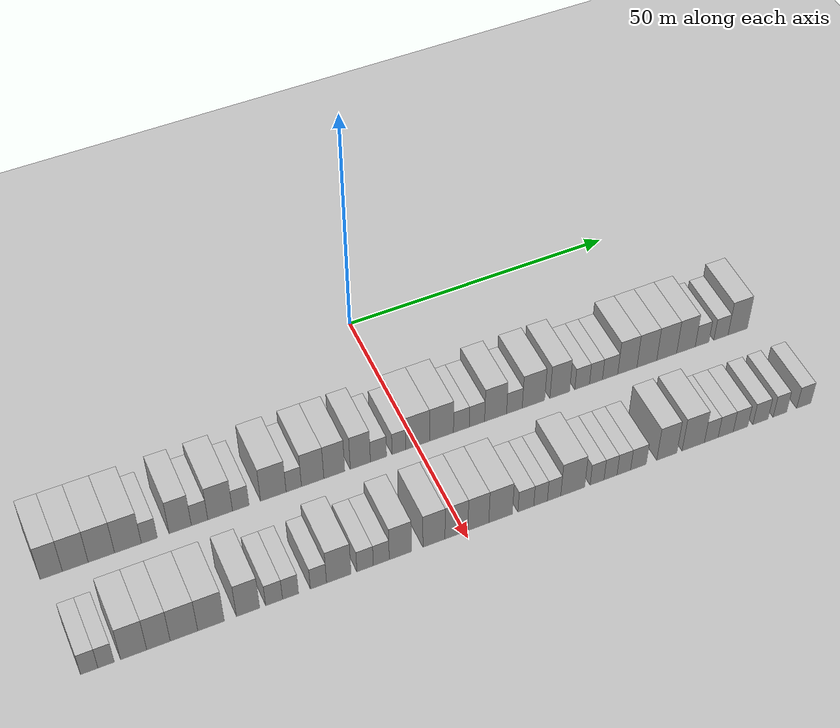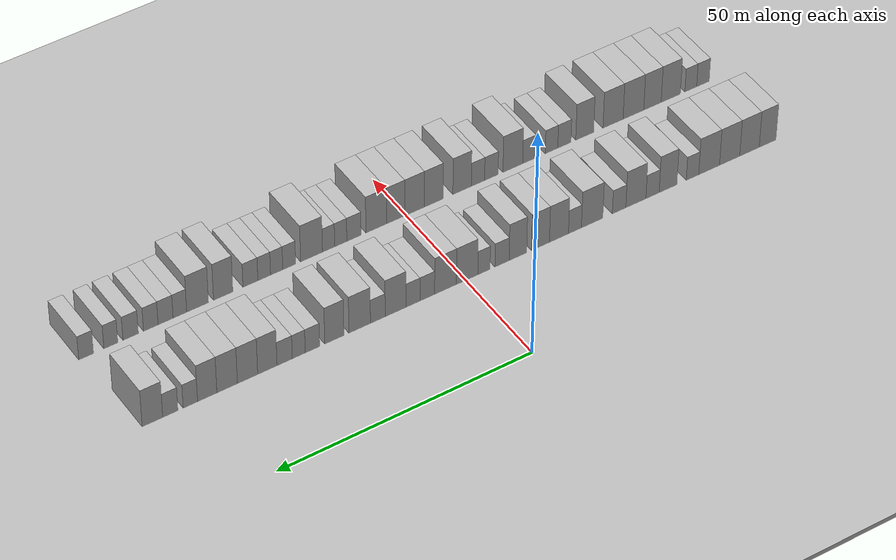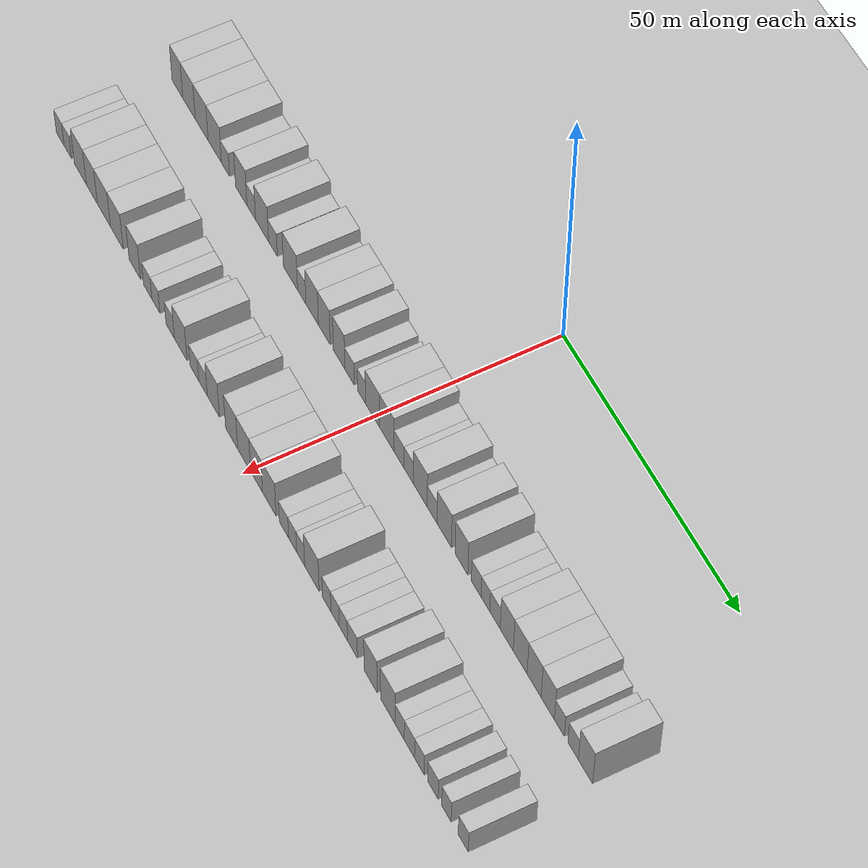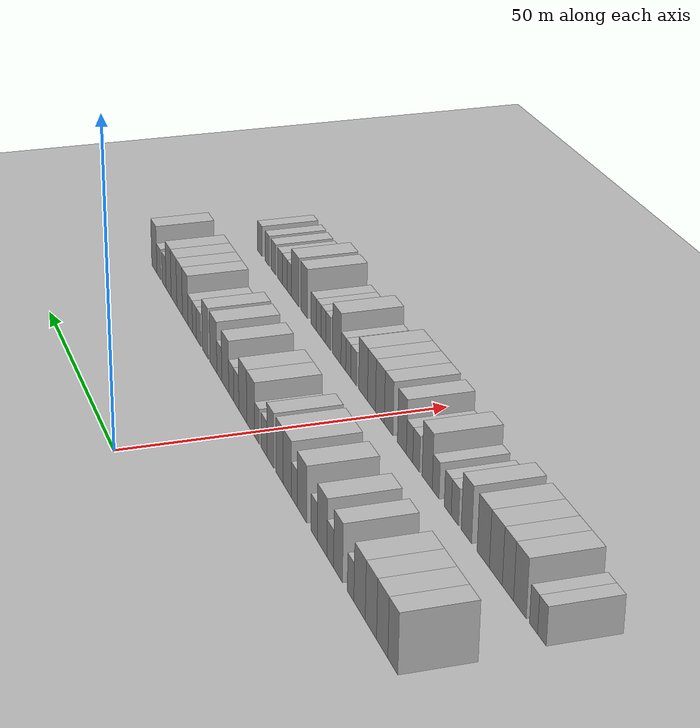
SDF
<sdf version="1.6">
 <world name="default">
  <include><name>ground_plane_1</name><uri>model://HANNAS_ground_plane</uri></include>
  <include>
   <name>ground_plane_2</name>
   <uri>model://HANNAS_ground_plane</uri>
   <pose>100 0 0  0 0 0</pose>
  </include>
  <model name="building_34">
   <static>1</static>
   <pose>25.0000 -63.4051 0 0.000000 0.000000 0.000000</pose>
   <link name="link">
    <pose>0 0 4.50 0 0 0</pose>
    <collision name="collision"><geometry><box><size>10.0000 3.6512 9.0000</size></box></geometry></collision>
    <visual name="visual">
     <cast_shadows>0</cast_shadows>
     <geometry><box><size>10.0000 3.6512 9.0000</size></box></geometry>
     <material>
      <script>
       <uri>model://HANNAS_wall/materials/scripts</uri>
       <uri>model://HANNAS_wall/materials/textures</uri>
       <name>vrc/HANNAS_wall</name>
      </script>
     </material>
    </visual>
   </link>
  </model>
  <model name="building_35">
   <static>1</static>
   <pose>25.0000 -59.4551 0 0.000000 0.000000 0.000000</pose>
   <link name="link">
    <pose>0 0 4.50 0 0 0</pose>
    <collision name="collision"><geometry><box><size>10.0000 4.2489 9.0000</size></box></geometry></collision>
    <visual name="visual">
     <cast_shadows>0</cast_shadows>
     <geometry><box><size>10.0000 4.2489 9.0000</size></box></geometry>
     <material>
      <script>
       <uri>model://HANNAS_wall/materials/scripts</uri>
       <uri>model://HANNAS_wall/materials/textures</uri>
       <name>vrc/HANNAS_wall</name>
      </script>
     </material>
    </visual>
   </link>
  </model>
  <model name="building_36">
   <static>1</static>
   <pose>25.0000 -55.1491 0 0.000000 0.000000 0.000000</pose>
   <link name="link">
    <pose>0 0 4.50 0 0 0</pose>
    <collision name="collision"><geometry><box><size>10.0000 4.3631 9.0000</size></box></geometry></collision>
    <visual name="visual">
     <cast_shadows>0</cast_shadows>
     <geometry><box><size>10.0000 4.3631 9.0000</size></box></geometry>
     <material>
      <script>
       <uri>model://HANNAS_wall/materials/scripts</uri>
       <uri>model://HANNAS_wall/materials/textures</uri>
       <name>vrc/HANNAS_wall</name>
      </script>
     </material>
    </visual>
   </link>
  </model>
  <model name="building_37">
   <static>1</static>
   <pose>25.0000 -50.7211 0 0.000000 0.000000 0.000000</pose>
   <link name="link">
    <pose>0 0 4.50 0 0 0</pose>
    <collision name="collision"><geometry><box><size>10.0000 4.4929 9.0000</size></box></geometry></collision>
    <visual name="visual">
     <cast_shadows>0</cast_shadows>
     <geometry><box><size>10.0000 4.4929 9.0000</size></box></geometry>
     <material>
      <script>
       <uri>model://HANNAS_wall/materials/scripts</uri>
       <uri>model://HANNAS_wall/materials/textures</uri>
       <name>vrc/HANNAS_wall</name>
      </script>
     </material>
    </visual>
   </link>
  </model>
  <model name="building_38">
   <static>1</static>
   <pose>25.0000 -47.1336 0 0.000000 0.000000 0.000000</pose>
   <link name="link">
    <pose>0 0 3.00 0 0 0</pose>
    <collision name="collision"><geometry><box><size>10.0000 2.6821 6.0000</size></box></geometry></collision>
    <visual name="visual">
     <cast_shadows>0</cast_shadows>
     <geometry><box><size>10.0000 2.6821 6.0000</size></box></geometry>
     <material>
      <script>
       <uri>model://HANNAS_wall/materials/scripts</uri>
       <uri>model://HANNAS_wall/materials/textures</uri>
       <name>vrc/HANNAS_wall</name>
      </script>
     </material>
    </visual>
   </link>
  </model>
  <model name="building_39">
   <static>1</static>
   <pose>25.0000 -41.9003 0 0.000000 0.000000 0.000000</pose>
   <link name="link">
    <pose>0 0 4.50 0 0 0</pose>
    <collision name="collision"><geometry><box><size>10.0000 3.7845 9.0000</size></box></geometry></collision>
    <visual name="visual">
     <cast_shadows>0</cast_shadows>
     <geometry><box><size>10.0000 3.7845 9.0000</size></box></geometry>
     <material>
      <script>
       <uri>model://HANNAS_wall/materials/scripts</uri>
       <uri>model://HANNAS_wall/materials/textures</uri>
       <name>vrc/HANNAS_wall</name>
      </script>
     </material>
    </visual>
   </link>
  </model>
  <model name="building_40">
   <static>1</static>
   <pose>25.0000 -38.6015 0 0.000000 0.000000 0.000000</pose>
   <link name="link">
    <pose>0 0 3.00 0 0 0</pose>
    <collision name="collision"><geometry><box><size>10.0000 2.8131 6.0000</size></box></geometry></collision>
    <visual name="visual">
     <cast_shadows>0</cast_shadows>
     <geometry><box><size>10.0000 2.8131 6.0000</size></box></geometry>
     <material>
      <script>
       <uri>model://HANNAS_wall/materials/scripts</uri>
       <uri>model://HANNAS_wall/materials/textures</uri>
       <name>vrc/HANNAS_wall</name>
      </script>
     </material>
    </visual>
   </link>
  </model>
  <model name="building_41">
   <static>1</static>
   <pose>25.0000 -35.0680 0 0.000000 0.000000 0.000000</pose>
   <link name="link">
    <pose>0 0 4.50 0 0 0</pose>
    <collision name="collision"><geometry><box><size>10.0000 4.2538 9.0000</size></box></geometry></collision>
    <visual name="visual">
     <cast_shadows>0</cast_shadows>
     <geometry><box><size>10.0000 4.2538 9.0000</size></box></geometry>
     <material>
      <script>
       <uri>model://HANNAS_wall/materials/scripts</uri>
       <uri>model://HANNAS_wall/materials/textures</uri>
       <name>vrc/HANNAS_wall</name>
      </script>
     </material>
    </visual>
   </link>
  </model>
  <model name="building_42">
   <static>1</static>
   <pose>25.0000 -31.5135 0 0.000000 0.000000 0.000000</pose>
   <link name="link">
    <pose>0 0 3.00 0 0 0</pose>
    <collision name="collision"><geometry><box><size>10.0000 2.8553 6.0000</size></box></geometry></collision>
    <visual name="visual">
     <cast_shadows>0</cast_shadows>
     <geometry><box><size>10.0000 2.8553 6.0000</size></box></geometry>
     <material>
      <script>
       <uri>model://HANNAS_wall/materials/scripts</uri>
       <uri>model://HANNAS_wall/materials/textures</uri>
       <name>vrc/HANNAS_wall</name>
      </script>
     </material>
    </visual>
   </link>
  </model>
  <model name="building_43">
   <static>1</static>
   <pose>25.0000 -25.8438 0 0.000000 0.000000 0.000000</pose>
   <link name="link">
    <pose>0 0 4.50 0 0 0</pose>
    <collision name="collision"><geometry><box><size>10.0000 4.4839 9.0000</size></box></geometry></collision>
    <visual name="visual">
     <cast_shadows>0</cast_shadows>
     <geometry><box><size>10.0000 4.4839 9.0000</size></box></geometry>
     <material>
      <script>
       <uri>model://HANNAS_wall/materials/scripts</uri>
       <uri>model://HANNAS_wall/materials/textures</uri>
       <name>vrc/HANNAS_wall</name>
      </script>
     </material>
    </visual>
   </link>
  </model>
  <model name="building_44">
   <static>1</static>
   <pose>25.0000 -22.2543 0 0.000000 0.000000 0.000000</pose>
   <link name="link">
    <pose>0 0 3.00 0 0 0</pose>
    <collision name="collision"><geometry><box><size>10.0000 2.6952 6.0000</size></box></geometry></collision>
    <visual name="visual">
     <cast_shadows>0</cast_shadows>
     <geometry><box><size>10.0000 2.6952 6.0000</size></box></geometry>
     <material>
      <script>
       <uri>model://HANNAS_wall/materials/scripts</uri>
       <uri>model://HANNAS_wall/materials/textures</uri>
       <name>vrc/HANNAS_wall</name>
      </script>
     </material>
    </visual>
   </link>
  </model>
  <model name="building_45">
   <static>1</static>
   <pose>25.0000 -18.9246 0 0.000000 0.000000 0.000000</pose>
   <link name="link">
    <pose>0 0 4.50 0 0 0</pose>
    <collision name="collision"><geometry><box><size>10.0000 3.9641 9.0000</size></box></geometry></collision>
    <visual name="visual">
     <cast_shadows>0</cast_shadows>
     <geometry><box><size>10.0000 3.9641 9.0000</size></box></geometry>
     <material>
      <script>
       <uri>model://HANNAS_wall/materials/scripts</uri>
       <uri>model://HANNAS_wall/materials/textures</uri>
       <name>vrc/HANNAS_wall</name>
      </script>
     </material>
    </visual>
   </link>
  </model>
  <model name="building_46">
   <static>1</static>
   <pose>25.0000 -15.0828 0 0.000000 0.000000 0.000000</pose>
   <link name="link">
    <pose>0 0 4.50 0 0 0</pose>
    <collision name="collision"><geometry><box><size>10.0000 3.7196 9.0000</size></box></geometry></collision>
    <visual name="visual">
     <cast_shadows>0</cast_shadows>
     <geometry><box><size>10.0000 3.7196 9.0000</size></box></geometry>
     <material>
      <script>
       <uri>model://HANNAS_wall/materials/scripts</uri>
       <uri>model://HANNAS_wall/materials/textures</uri>
       <name>vrc/HANNAS_wall</name>
      </script>
     </material>
    </visual>
   </link>
  </model>
  <model name="building_47">
   <static>1</static>
   <pose>25.0000 -10.4164 0 0.000000 0.000000 0.000000</pose>
   <link name="link">
    <pose>0 0 4.50 0 0 0</pose>
    <collision name="collision"><geometry><box><size>10.0000 3.6133 9.0000</size></box></geometry></collision>
    <visual name="visual">
     <cast_shadows>0</cast_shadows>
     <geometry><box><size>10.0000 3.6133 9.0000</size></box></geometry>
     <material>
      <script>
       <uri>model://HANNAS_wall/materials/scripts</uri>
       <uri>model://HANNAS_wall/materials/textures</uri>
       <name>vrc/HANNAS_wall</name>
      </script>
     </material>
    </visual>
   </link>
  </model>
  <model name="building_48">
   <static>1</static>
   <pose>25.0000 -7.1538 0 0.000000 0.000000 0.000000</pose>
   <link name="link">
    <pose>0 0 3.00 0 0 0</pose>
    <collision name="collision"><geometry><box><size>10.0000 2.9118 6.0000</size></box></geometry></collision>
    <visual name="visual">
     <cast_shadows>0</cast_shadows>
     <geometry><box><size>10.0000 2.9118 6.0000</size></box></geometry>
     <material>
      <script>
       <uri>model://HANNAS_wall/materials/scripts</uri>
       <uri>model://HANNAS_wall/materials/textures</uri>
       <name>vrc/HANNAS_wall</name>
      </script>
     </material>
    </visual>
   </link>
  </model>
  <model name="building_49">
   <static>1</static>
   <pose>25.0000 -3.4486 0 0.000000 0.000000 0.000000</pose>
   <link name="link">
    <pose>0 0 3.00 0 0 0</pose>
    <collision name="collision"><geometry><box><size>10.0000 2.4985 6.0000</size></box></geometry></collision>
    <visual name="visual">
     <cast_shadows>0</cast_shadows>
     <geometry><box><size>10.0000 2.4985 6.0000</size></box></geometry>
     <material>
      <script>
       <uri>model://HANNAS_wall/materials/scripts</uri>
       <uri>model://HANNAS_wall/materials/textures</uri>
       <name>vrc/HANNAS_wall</name>
      </script>
     </material>
    </visual>
   </link>
  </model>
  <model name="building_50">
   <static>1</static>
   <pose>25.0000 -0.0272 0 0.000000 0.000000 0.000000</pose>
   <link name="link">
    <pose>0 0 4.50 0 0 0</pose>
    <collision name="collision"><geometry><box><size>10.0000 4.3445 9.0000</size></box></geometry></collision>
    <visual name="visual">
     <cast_shadows>0</cast_shadows>
     <geometry><box><size>10.0000 4.3445 9.0000</size></box></geometry>
     <material>
      <script>
       <uri>model://HANNAS_wall/materials/scripts</uri>
       <uri>model://HANNAS_wall/materials/textures</uri>
       <name>vrc/HANNAS_wall</name>
      </script>
     </material>
    </visual>
   </link>
  </model>
  <model name="building_51">
   <static>1</static>
   <pose>25.0000 4.3547 0 0.000000 0.000000 0.000000</pose>
   <link name="link">
    <pose>0 0 4.50 0 0 0</pose>
    <collision name="collision"><geometry><box><size>10.0000 4.4192 9.0000</size></box></geometry></collision>
    <visual name="visual">
     <cast_shadows>0</cast_shadows>
     <geometry><box><size>10.0000 4.4192 9.0000</size></box></geometry>
     <material>
      <script>
       <uri>model://HANNAS_wall/materials/scripts</uri>
       <uri>model://HANNAS_wall/materials/textures</uri>
       <name>vrc/HANNAS_wall</name>
      </script>
     </material>
    </visual>
   </link>
  </model>
  <model name="building_52">
   <static>1</static>
   <pose>25.0000 8.0335 0 0.000000 0.000000 0.000000</pose>
   <link name="link">
    <pose>0 0 3.00 0 0 0</pose>
    <collision name="collision"><geometry><box><size>10.0000 2.9385 6.0000</size></box></geometry></collision>
    <visual name="visual">
     <cast_shadows>0</cast_shadows>
     <geometry><box><size>10.0000 2.9385 6.0000</size></box></geometry>
     <material>
      <script>
       <uri>model://HANNAS_wall/materials/scripts</uri>
       <uri>model://HANNAS_wall/materials/textures</uri>
       <name>vrc/HANNAS_wall</name>
      </script>
     </material>
    </visual>
   </link>
  </model>
  <model name="building_53">
   <static>1</static>
   <pose>25.0000 10.9266 0 0.000000 0.000000 0.000000</pose>
   <link name="link">
    <pose>0 0 3.00 0 0 0</pose>
    <collision name="collision"><geometry><box><size>10.0000 2.8477 6.0000</size></box></geometry></collision>
    <visual name="visual">
     <cast_shadows>0</cast_shadows>
     <geometry><box><size>10.0000 2.8477 6.0000</size></box></geometry>
     <material>
      <script>
       <uri>model://HANNAS_wall/materials/scripts</uri>
       <uri>model://HANNAS_wall/materials/textures</uri>
       <name>vrc/HANNAS_wall</name>
      </script>
     </material>
    </visual>
   </link>
  </model>
  <model name="building_54">
   <static>1</static>
   <pose>25.0000 14.4176 0 0.000000 0.000000 0.000000</pose>
   <link name="link">
    <pose>0 0 4.50 0 0 0</pose>
    <collision name="collision"><geometry><box><size>10.0000 4.1342 9.0000</size></box></geometry></collision>
    <visual name="visual">
     <cast_shadows>0</cast_shadows>
     <geometry><box><size>10.0000 4.1342 9.0000</size></box></geometry>
     <material>
      <script>
       <uri>model://HANNAS_wall/materials/scripts</uri>
       <uri>model://HANNAS_wall/materials/textures</uri>
       <name>vrc/HANNAS_wall</name>
      </script>
     </material>
    </visual>
   </link>
  </model>
  <model name="building_55">
   <static>1</static>
   <pose>25.0000 17.9612 0 0.000000 0.000000 0.000000</pose>
   <link name="link">
    <pose>0 0 3.00 0 0 0</pose>
    <collision name="collision"><geometry><box><size>10.0000 2.9531 6.0000</size></box></geometry></collision>
    <visual name="visual">
     <cast_shadows>0</cast_shadows>
     <geometry><box><size>10.0000 2.9531 6.0000</size></box></geometry>
     <material>
      <script>
       <uri>model://HANNAS_wall/materials/scripts</uri>
       <uri>model://HANNAS_wall/materials/textures</uri>
       <name>vrc/HANNAS_wall</name>
      </script>
     </material>
    </visual>
   </link>
  </model>
  <model name="building_56">
   <static>1</static>
   <pose>25.0000 21.5732 0 0.000000 0.000000 0.000000</pose>
   <link name="link">
    <pose>0 0 4.50 0 0 0</pose>
    <collision name="collision"><geometry><box><size>10.0000 4.2710 9.0000</size></box></geometry></collision>
    <visual name="visual">
     <cast_shadows>0</cast_shadows>
     <geometry><box><size>10.0000 4.2710 9.0000</size></box></geometry>
     <material>
      <script>
       <uri>model://HANNAS_wall/materials/scripts</uri>
       <uri>model://HANNAS_wall/materials/textures</uri>
       <name>vrc/HANNAS_wall</name>
      </script>
     </material>
    </visual>
   </link>
  </model>
  <model name="building_57">
   <static>1</static>
   <pose>25.0000 26.5971 0 0.000000 0.000000 0.000000</pose>
   <link name="link">
    <pose>0 0 4.50 0 0 0</pose>
    <collision name="collision"><geometry><box><size>10.0000 3.7767 9.0000</size></box></geometry></collision>
    <visual name="visual">
     <cast_shadows>0</cast_shadows>
     <geometry><box><size>10.0000 3.7767 9.0000</size></box></geometry>
     <material>
      <script>
       <uri>model://HANNAS_wall/materials/scripts</uri>
       <uri>model://HANNAS_wall/materials/textures</uri>
       <name>vrc/HANNAS_wall</name>
      </script>
     </material>
    </visual>
   </link>
  </model>
  <model name="building_58">
   <static>1</static>
   <pose>25.0000 30.9032 0 0.000000 0.000000 0.000000</pose>
   <link name="link">
    <pose>0 0 3.00 0 0 0</pose>
    <collision name="collision"><geometry><box><size>10.0000 2.8354 6.0000</size></box></geometry></collision>
    <visual name="visual">
     <cast_shadows>0</cast_shadows>
     <geometry><box><size>10.0000 2.8354 6.0000</size></box></geometry>
     <material>
      <script>
       <uri>model://HANNAS_wall/materials/scripts</uri>
       <uri>model://HANNAS_wall/materials/textures</uri>
       <name>vrc/HANNAS_wall</name>
      </script>
     </material>
    </visual>
   </link>
  </model>
  <model name="building_59">
   <static>1</static>
   <pose>25.0000 33.5812 0 0.000000 0.000000 0.000000</pose>
   <link name="link">
    <pose>0 0 3.00 0 0 0</pose>
    <collision name="collision"><geometry><box><size>10.0000 2.5206 6.0000</size></box></geometry></collision>
    <visual name="visual">
     <cast_shadows>0</cast_shadows>
     <geometry><box><size>10.0000 2.5206 6.0000</size></box></geometry>
     <material>
      <script>
       <uri>model://HANNAS_wall/materials/scripts</uri>
       <uri>model://HANNAS_wall/materials/textures</uri>
       <name>vrc/HANNAS_wall</name>
      </script>
     </material>
    </visual>
   </link>
  </model>
  <model name="building_60">
   <static>1</static>
   <pose>25.0000 36.3326 0 0.000000 0.000000 0.000000</pose>
   <link name="link">
    <pose>0 0 3.00 0 0 0</pose>
    <collision name="collision"><geometry><box><size>10.0000 2.9823 6.0000</size></box></geometry></collision>
    <visual name="visual">
     <cast_shadows>0</cast_shadows>
     <geometry><box><size>10.0000 2.9823 6.0000</size></box></geometry>
     <material>
      <script>
       <uri>model://HANNAS_wall/materials/scripts</uri>
       <uri>model://HANNAS_wall/materials/textures</uri>
       <name>vrc/HANNAS_wall</name>
      </script>
     </material>
    </visual>
   </link>
  </model>
  <model name="building_61">
   <static>1</static>
   <pose>25.0000 39.7058 0 0.000000 0.000000 0.000000</pose>
   <link name="link">
    <pose>0 0 4.50 0 0 0</pose>
    <collision name="collision"><geometry><box><size>10.0000 3.7640 9.0000</size></box></geometry></collision>
    <visual name="visual">
     <cast_shadows>0</cast_shadows>
     <geometry><box><size>10.0000 3.7640 9.0000</size></box></geometry>
     <material>
      <script>
       <uri>model://HANNAS_wall/materials/scripts</uri>
       <uri>model://HANNAS_wall/materials/textures</uri>
       <name>vrc/HANNAS_wall</name>
      </script>
     </material>
    </visual>
   </link>
  </model>
  <model name="building_62">
   <static>1</static>
   <pose>25.0000 43.5448 0 0.000000 0.000000 0.000000</pose>
   <link name="link">
    <pose>0 0 4.50 0 0 0</pose>
    <collision name="collision"><geometry><box><size>10.0000 3.9140 9.0000</size></box></geometry></collision>
    <visual name="visual">
     <cast_shadows>0</cast_shadows>
     <geometry><box><size>10.0000 3.9140 9.0000</size></box></geometry>
     <material>
      <script>
       <uri>model://HANNAS_wall/materials/scripts</uri>
       <uri>model://HANNAS_wall/materials/textures</uri>
       <name>vrc/HANNAS_wall</name>
      </script>
     </material>
    </visual>
   </link>
  </model>
  <model name="building_63">
   <static>1</static>
   <pose>25.0000 47.4772 0 0.000000 0.000000 0.000000</pose>
   <link name="link">
    <pose>0 0 4.50 0 0 0</pose>
    <collision name="collision"><geometry><box><size>10.0000 3.9509 9.0000</size></box></geometry></collision>
    <visual name="visual">
     <cast_shadows>0</cast_shadows>
     <geometry><box><size>10.0000 3.9509 9.0000</size></box></geometry>
     <material>
      <script>
       <uri>model://HANNAS_wall/materials/scripts</uri>
       <uri>model://HANNAS_wall/materials/textures</uri>
       <name>vrc/HANNAS_wall</name>
      </script>
     </material>
    </visual>
   </link>
  </model>
  <model name="building_64">
   <static>1</static>
   <pose>25.0000 51.3090 0 0.000000 0.000000 0.000000</pose>
   <link name="link">
    <pose>0 0 4.50 0 0 0</pose>
    <collision name="collision"><geometry><box><size>10.0000 3.7126 9.0000</size></box></geometry></collision>
    <visual name="visual">
     <cast_shadows>0</cast_shadows>
     <geometry><box><size>10.0000 3.7126 9.0000</size></box></geometry>
     <material>
      <script>
       <uri>model://HANNAS_wall/materials/scripts</uri>
       <uri>model://HANNAS_wall/materials/textures</uri>
       <name>vrc/HANNAS_wall</name>
      </script>
     </material>
    </visual>
   </link>
  </model>
  <model name="building_65">
   <static>1</static>
   <pose>25.0000 54.5427 0 0.000000 0.000000 0.000000</pose>
   <link name="link">
    <pose>0 0 3.00 0 0 0</pose>
    <collision name="collision"><geometry><box><size>10.0000 2.7549 6.0000</size></box></geometry></collision>
    <visual name="visual">
     <cast_shadows>0</cast_shadows>
     <geometry><box><size>10.0000 2.7549 6.0000</size></box></geometry>
     <material>
      <script>
       <uri>model://HANNAS_wall/materials/scripts</uri>
       <uri>model://HANNAS_wall/materials/textures</uri>
       <name>vrc/HANNAS_wall</name>
      </script>
     </material>
    </visual>
   </link>
  </model>
  <model name="building_66">
   <static>1</static>
   <pose>25.0000 58.3612 0 0.000000 0.000000 0.000000</pose>
   <link name="link">
    <pose>0 0 3.00 0 0 0</pose>
    <collision name="collision"><geometry><box><size>10.0000 2.8820 6.0000</size></box></geometry></collision>
    <visual name="visual">
     <cast_shadows>0</cast_shadows>
     <geometry><box><size>10.0000 2.8820 6.0000</size></box></geometry>
     <material>
      <script>
       <uri>model://HANNAS_wall/materials/scripts</uri>
       <uri>model://HANNAS_wall/materials/textures</uri>
       <name>vrc/HANNAS_wall</name>
      </script>
     </material>
    </visual>
   </link>
  </model>
  <model name="building_67">
   <static>1</static>
   <pose>25.0000 61.7529 0 0.000000 0.000000 0.000000</pose>
   <link name="link">
    <pose>0 0 4.50 0 0 0</pose>
    <collision name="collision"><geometry><box><size>10.0000 3.9013 9.0000</size></box></geometry></collision>
    <visual name="visual">
     <cast_shadows>0</cast_shadows>
     <geometry><box><size>10.0000 3.9013 9.0000</size></box></geometry>
     <material>
      <script>
       <uri>model://HANNAS_wall/materials/scripts</uri>
       <uri>model://HANNAS_wall/materials/textures</uri>
       <name>vrc/HANNAS_wall</name>
      </script>
     </material>
    </visual>
   </link>
  </model>
  <model name="building_138">
   <static>1</static>
   <pose>44.0000 -62.9575 0 0.000000 0.000000 0.000000</pose>
   <link name="link">
    <pose>0 0 3.00 0 0 0</pose>
    <collision name="collision"><geometry><box><size>10.0000 2.7540 6.0000</size></box></geometry></collision>
    <visual name="visual">
     <cast_shadows>0</cast_shadows>
     <geometry><box><size>10.0000 2.7540 6.0000</size></box></geometry>
     <material>
      <script>
       <uri>model://HANNAS_wall/materials/scripts</uri>
       <uri>model://HANNAS_wall/materials/textures</uri>
       <name>vrc/HANNAS_wall</name>
      </script>
     </material>
    </visual>
   </link>
  </model>
  <model name="building_139">
   <static>1</static>
   <pose>44.0000 -60.2857 0 0.000000 0.000000 0.000000</pose>
   <link name="link">
    <pose>0 0 3.00 0 0 0</pose>
    <collision name="collision"><geometry><box><size>10.0000 2.5895 6.0000</size></box></geometry></collision>
    <visual name="visual">
     <cast_shadows>0</cast_shadows>
     <geometry><box><size>10.0000 2.5895 6.0000</size></box></geometry>
     <material>
      <script>
       <uri>model://HANNAS_wall/materials/scripts</uri>
       <uri>model://HANNAS_wall/materials/textures</uri>
       <name>vrc/HANNAS_wall</name>
      </script>
     </material>
    </visual>
   </link>
  </model>
  <model name="building_140">
   <static>1</static>
   <pose>44.0000 -55.8949 0 0.000000 0.000000 0.000000</pose>
   <link name="link">
    <pose>0 0 4.50 0 0 0</pose>
    <collision name="collision"><geometry><box><size>10.0000 4.1921 9.0000</size></box></geometry></collision>
    <visual name="visual">
     <cast_shadows>0</cast_shadows>
     <geometry><box><size>10.0000 4.1921 9.0000</size></box></geometry>
     <material>
      <script>
       <uri>model://HANNAS_wall/materials/scripts</uri>
       <uri>model://HANNAS_wall/materials/textures</uri>
       <name>vrc/HANNAS_wall</name>
      </script>
     </material>
    </visual>
   </link>
  </model>
  <model name="building_141">
   <static>1</static>
   <pose>44.0000 -51.9000 0 0.000000 0.000000 0.000000</pose>
   <link name="link">
    <pose>0 0 4.50 0 0 0</pose>
    <collision name="collision"><geometry><box><size>10.0000 3.7979 9.0000</size></box></geometry></collision>
    <visual name="visual">
     <cast_shadows>0</cast_shadows>
     <geometry><box><size>10.0000 3.7979 9.0000</size></box></geometry>
     <material>
      <script>
       <uri>model://HANNAS_wall/materials/scripts</uri>
       <uri>model://HANNAS_wall/materials/textures</uri>
       <name>vrc/HANNAS_wall</name>
      </script>
     </material>
    </visual>
   </link>
  </model>
  <model name="building_142">
   <static>1</static>
   <pose>44.0000 -47.7622 0 0.000000 0.000000 0.000000</pose>
   <link name="link">
    <pose>0 0 4.50 0 0 0</pose>
    <collision name="collision"><geometry><box><size>10.0000 4.4777 9.0000</size></box></geometry></collision>
    <visual name="visual">
     <cast_shadows>0</cast_shadows>
     <geometry><box><size>10.0000 4.4777 9.0000</size></box></geometry>
     <material>
      <script>
       <uri>model://HANNAS_wall/materials/scripts</uri>
       <uri>model://HANNAS_wall/materials/textures</uri>
       <name>vrc/HANNAS_wall</name>
      </script>
     </material>
    </visual>
   </link>
  </model>
  <model name="building_143">
   <static>1</static>
   <pose>44.0000 -43.3488 0 0.000000 0.000000 0.000000</pose>
   <link name="link">
    <pose>0 0 4.50 0 0 0</pose>
    <collision name="collision"><geometry><box><size>10.0000 4.3491 9.0000</size></box></geometry></collision>
    <visual name="visual">
     <cast_shadows>0</cast_shadows>
     <geometry><box><size>10.0000 4.3491 9.0000</size></box></geometry>
     <material>
      <script>
       <uri>model://HANNAS_wall/materials/scripts</uri>
       <uri>model://HANNAS_wall/materials/textures</uri>
       <name>vrc/HANNAS_wall</name>
      </script>
     </material>
    </visual>
   </link>
  </model>
  <model name="building_144">
   <static>1</static>
   <pose>44.0000 -37.2483 0 0.000000 0.000000 0.000000</pose>
   <link name="link">
    <pose>0 0 4.50 0 0 0</pose>
    <collision name="collision"><geometry><box><size>10.0000 3.8519 9.0000</size></box></geometry></collision>
    <visual name="visual">
     <cast_shadows>0</cast_shadows>
     <geometry><box><size>10.0000 3.8519 9.0000</size></box></geometry>
     <material>
      <script>
       <uri>model://HANNAS_wall/materials/scripts</uri>
       <uri>model://HANNAS_wall/materials/textures</uri>
       <name>vrc/HANNAS_wall</name>
      </script>
     </material>
    </visual>
   </link>
  </model>
  <model name="building_145">
   <static>1</static>
   <pose>44.0000 -32.9119 0 0.000000 0.000000 0.000000</pose>
   <link name="link">
    <pose>0 0 3.00 0 0 0</pose>
    <collision name="collision"><geometry><box><size>10.0000 2.8209 6.0000</size></box></geometry></collision>
    <visual name="visual">
     <cast_shadows>0</cast_shadows>
     <geometry><box><size>10.0000 2.8209 6.0000</size></box></geometry>
     <material>
      <script>
       <uri>model://HANNAS_wall/materials/scripts</uri>
       <uri>model://HANNAS_wall/materials/textures</uri>
       <name>vrc/HANNAS_wall</name>
      </script>
     </material>
    </visual>
   </link>
  </model>
  <model name="building_146">
   <static>1</static>
   <pose>44.0000 -30.1590 0 0.000000 0.000000 0.000000</pose>
   <link name="link">
    <pose>0 0 3.00 0 0 0</pose>
    <collision name="collision"><geometry><box><size>10.0000 2.6849 6.0000</size></box></geometry></collision>
    <visual name="visual">
     <cast_shadows>0</cast_shadows>
     <geometry><box><size>10.0000 2.6849 6.0000</size></box></geometry>
     <material>
      <script>
       <uri>model://HANNAS_wall/materials/scripts</uri>
       <uri>model://HANNAS_wall/materials/textures</uri>
       <name>vrc/HANNAS_wall</name>
      </script>
     </material>
    </visual>
   </link>
  </model>
  <model name="building_147">
   <static>1</static>
   <pose>44.0000 -25.4429 0 0.000000 0.000000 0.000000</pose>
   <link name="link">
    <pose>0 0 3.00 0 0 0</pose>
    <collision name="collision"><geometry><box><size>10.0000 2.7472 6.0000</size></box></geometry></collision>
    <visual name="visual">
     <cast_shadows>0</cast_shadows>
     <geometry><box><size>10.0000 2.7472 6.0000</size></box></geometry>
     <material>
      <script>
       <uri>model://HANNAS_wall/materials/scripts</uri>
       <uri>model://HANNAS_wall/materials/textures</uri>
       <name>vrc/HANNAS_wall</name>
      </script>
     </material>
    </visual>
   </link>
  </model>
  <model name="building_148">
   <static>1</static>
   <pose>44.0000 -21.9827 0 0.000000 0.000000 0.000000</pose>
   <link name="link">
    <pose>0 0 4.50 0 0 0</pose>
    <collision name="collision"><geometry><box><size>10.0000 4.1733 9.0000</size></box></geometry></collision>
    <visual name="visual">
     <cast_shadows>0</cast_shadows>
     <geometry><box><size>10.0000 4.1733 9.0000</size></box></geometry>
     <material>
      <script>
       <uri>model://HANNAS_wall/materials/scripts</uri>
       <uri>model://HANNAS_wall/materials/textures</uri>
       <name>vrc/HANNAS_wall</name>
      </script>
     </material>
    </visual>
   </link>
  </model>
  <model name="building_149">
   <static>1</static>
   <pose>44.0000 -17.4789 0 0.000000 0.000000 0.000000</pose>
   <link name="link">
    <pose>0 0 3.00 0 0 0</pose>
    <collision name="collision"><geometry><box><size>10.0000 2.8342 6.0000</size></box></geometry></collision>
    <visual name="visual">
     <cast_shadows>0</cast_shadows>
     <geometry><box><size>10.0000 2.8342 6.0000</size></box></geometry>
     <material>
      <script>
       <uri>model://HANNAS_wall/materials/scripts</uri>
       <uri>model://HANNAS_wall/materials/textures</uri>
       <name>vrc/HANNAS_wall</name>
      </script>
     </material>
    </visual>
   </link>
  </model>
  <model name="building_150">
   <static>1</static>
   <pose>44.0000 -14.6883 0 0.000000 0.000000 0.000000</pose>
   <link name="link">
    <pose>0 0 3.00 0 0 0</pose>
    <collision name="collision"><geometry><box><size>10.0000 2.7471 6.0000</size></box></geometry></collision>
    <visual name="visual">
     <cast_shadows>0</cast_shadows>
     <geometry><box><size>10.0000 2.7471 6.0000</size></box></geometry>
     <material>
      <script>
       <uri>model://HANNAS_wall/materials/scripts</uri>
       <uri>model://HANNAS_wall/materials/textures</uri>
       <name>vrc/HANNAS_wall</name>
      </script>
     </material>
    </visual>
   </link>
  </model>
  <model name="building_151">
   <static>1</static>
   <pose>44.0000 -11.3805 0 0.000000 0.000000 0.000000</pose>
   <link name="link">
    <pose>0 0 4.50 0 0 0</pose>
    <collision name="collision"><geometry><box><size>10.0000 3.8685 9.0000</size></box></geometry></collision>
    <visual name="visual">
     <cast_shadows>0</cast_shadows>
     <geometry><box><size>10.0000 3.8685 9.0000</size></box></geometry>
     <material>
      <script>
       <uri>model://HANNAS_wall/materials/scripts</uri>
       <uri>model://HANNAS_wall/materials/textures</uri>
       <name>vrc/HANNAS_wall</name>
      </script>
     </material>
    </visual>
   </link>
  </model>
  <model name="building_152">
   <static>1</static>
   <pose>44.0000 -5.5124 0 0.000000 0.000000 0.000000</pose>
   <link name="link">
    <pose>0 0 4.50 0 0 0</pose>
    <collision name="collision"><geometry><box><size>10.0000 3.8677 9.0000</size></box></geometry></collision>
    <visual name="visual">
     <cast_shadows>0</cast_shadows>
     <geometry><box><size>10.0000 3.8677 9.0000</size></box></geometry>
     <material>
      <script>
       <uri>model://HANNAS_wall/materials/scripts</uri>
       <uri>model://HANNAS_wall/materials/textures</uri>
       <name>vrc/HANNAS_wall</name>
      </script>
     </material>
    </visual>
   </link>
  </model>
  <model name="building_153">
   <static>1</static>
   <pose>44.0000 -1.5452 0 0.000000 0.000000 0.000000</pose>
   <link name="link">
    <pose>0 0 4.50 0 0 0</pose>
    <collision name="collision"><geometry><box><size>10.0000 4.0667 9.0000</size></box></geometry></collision>
    <visual name="visual">
     <cast_shadows>0</cast_shadows>
     <geometry><box><size>10.0000 4.0667 9.0000</size></box></geometry>
     <material>
      <script>
       <uri>model://HANNAS_wall/materials/scripts</uri>
       <uri>model://HANNAS_wall/materials/textures</uri>
       <name>vrc/HANNAS_wall</name>
      </script>
     </material>
    </visual>
   </link>
  </model>
  <model name="building_154">
   <static>1</static>
   <pose>44.0000 2.3525 0 0.000000 0.000000 0.000000</pose>
   <link name="link">
    <pose>0 0 4.50 0 0 0</pose>
    <collision name="collision"><geometry><box><size>10.0000 3.7287 9.0000</size></box></geometry></collision>
    <visual name="visual">
     <cast_shadows>0</cast_shadows>
     <geometry><box><size>10.0000 3.7287 9.0000</size></box></geometry>
     <material>
      <script>
       <uri>model://HANNAS_wall/materials/scripts</uri>
       <uri>model://HANNAS_wall/materials/textures</uri>
       <name>vrc/HANNAS_wall</name>
      </script>
     </material>
    </visual>
   </link>
  </model>
  <model name="building_155">
   <static>1</static>
   <pose>44.0000 6.3363 0 0.000000 0.000000 0.000000</pose>
   <link name="link">
    <pose>0 0 4.50 0 0 0</pose>
    <collision name="collision"><geometry><box><size>10.0000 4.2387 9.0000</size></box></geometry></collision>
    <visual name="visual">
     <cast_shadows>0</cast_shadows>
     <geometry><box><size>10.0000 4.2387 9.0000</size></box></geometry>
     <material>
      <script>
       <uri>model://HANNAS_wall/materials/scripts</uri>
       <uri>model://HANNAS_wall/materials/textures</uri>
       <name>vrc/HANNAS_wall</name>
      </script>
     </material>
    </visual>
   </link>
  </model>
  <model name="building_156">
   <static>1</static>
   <pose>44.0000 10.8894 0 0.000000 0.000000 0.000000</pose>
   <link name="link">
    <pose>0 0 3.00 0 0 0</pose>
    <collision name="collision"><geometry><box><size>10.0000 2.8675 6.0000</size></box></geometry></collision>
    <visual name="visual">
     <cast_shadows>0</cast_shadows>
     <geometry><box><size>10.0000 2.8675 6.0000</size></box></geometry>
     <material>
      <script>
       <uri>model://HANNAS_wall/materials/scripts</uri>
       <uri>model://HANNAS_wall/materials/textures</uri>
       <name>vrc/HANNAS_wall</name>
      </script>
     </material>
    </visual>
   </link>
  </model>
  <model name="building_157">
   <static>1</static>
   <pose>44.0000 13.5576 0 0.000000 0.000000 0.000000</pose>
   <link name="link">
    <pose>0 0 3.00 0 0 0</pose>
    <collision name="collision"><geometry><box><size>10.0000 2.4691 6.0000</size></box></geometry></collision>
    <visual name="visual">
     <cast_shadows>0</cast_shadows>
     <geometry><box><size>10.0000 2.4691 6.0000</size></box></geometry>
     <material>
      <script>
       <uri>model://HANNAS_wall/materials/scripts</uri>
       <uri>model://HANNAS_wall/materials/textures</uri>
       <name>vrc/HANNAS_wall</name>
      </script>
     </material>
    </visual>
   </link>
  </model>
  <model name="building_158">
   <static>1</static>
   <pose>44.0000 16.0172 0 0.000000 0.000000 0.000000</pose>
   <link name="link">
    <pose>0 0 3.00 0 0 0</pose>
    <collision name="collision"><geometry><box><size>10.0000 2.4500 6.0000</size></box></geometry></collision>
    <visual name="visual">
     <cast_shadows>0</cast_shadows>
     <geometry><box><size>10.0000 2.4500 6.0000</size></box></geometry>
     <material>
      <script>
       <uri>model://HANNAS_wall/materials/scripts</uri>
       <uri>model://HANNAS_wall/materials/textures</uri>
       <name>vrc/HANNAS_wall</name>
      </script>
     </material>
    </visual>
   </link>
  </model>
  <model name="building_159">
   <static>1</static>
   <pose>44.0000 19.4463 0 0.000000 0.000000 0.000000</pose>
   <link name="link">
    <pose>0 0 4.50 0 0 0</pose>
    <collision name="collision"><geometry><box><size>10.0000 4.4082 9.0000</size></box></geometry></collision>
    <visual name="visual">
     <cast_shadows>0</cast_shadows>
     <geometry><box><size>10.0000 4.4082 9.0000</size></box></geometry>
     <material>
      <script>
       <uri>model://HANNAS_wall/materials/scripts</uri>
       <uri>model://HANNAS_wall/materials/textures</uri>
       <name>vrc/HANNAS_wall</name>
      </script>
     </material>
    </visual>
   </link>
  </model>
  <model name="building_160">
   <static>1</static>
   <pose>44.0000 23.9363 0 0.000000 0.000000 0.000000</pose>
   <link name="link">
    <pose>0 0 3.00 0 0 0</pose>
    <collision name="collision"><geometry><box><size>10.0000 2.5720 6.0000</size></box></geometry></collision>
    <visual name="visual">
     <cast_shadows>0</cast_shadows>
     <geometry><box><size>10.0000 2.5720 6.0000</size></box></geometry>
     <material>
      <script>
       <uri>model://HANNAS_wall/materials/scripts</uri>
       <uri>model://HANNAS_wall/materials/textures</uri>
       <name>vrc/HANNAS_wall</name>
      </script>
     </material>
    </visual>
   </link>
  </model>
  <model name="building_161">
   <static>1</static>
   <pose>44.0000 26.4391 0 0.000000 0.000000 0.000000</pose>
   <link name="link">
    <pose>0 0 3.00 0 0 0</pose>
    <collision name="collision"><geometry><box><size>10.0000 2.4337 6.0000</size></box></geometry></collision>
    <visual name="visual">
     <cast_shadows>0</cast_shadows>
     <geometry><box><size>10.0000 2.4337 6.0000</size></box></geometry>
     <material>
      <script>
       <uri>model://HANNAS_wall/materials/scripts</uri>
       <uri>model://HANNAS_wall/materials/textures</uri>
       <name>vrc/HANNAS_wall</name>
      </script>
     </material>
    </visual>
   </link>
  </model>
  <model name="building_162">
   <static>1</static>
   <pose>44.0000 28.9203 0 0.000000 0.000000 0.000000</pose>
   <link name="link">
    <pose>0 0 3.00 0 0 0</pose>
    <collision name="collision"><geometry><box><size>10.0000 2.5287 6.0000</size></box></geometry></collision>
    <visual name="visual">
     <cast_shadows>0</cast_shadows>
     <geometry><box><size>10.0000 2.5287 6.0000</size></box></geometry>
     <material>
      <script>
       <uri>model://HANNAS_wall/materials/scripts</uri>
       <uri>model://HANNAS_wall/materials/textures</uri>
       <name>vrc/HANNAS_wall</name>
      </script>
     </material>
    </visual>
   </link>
  </model>
  <model name="building_163">
   <static>1</static>
   <pose>44.0000 31.6569 0 0.000000 0.000000 0.000000</pose>
   <link name="link">
    <pose>0 0 3.00 0 0 0</pose>
    <collision name="collision"><geometry><box><size>10.0000 2.9445 6.0000</size></box></geometry></collision>
    <visual name="visual">
     <cast_shadows>0</cast_shadows>
     <geometry><box><size>10.0000 2.9445 6.0000</size></box></geometry>
     <material>
      <script>
       <uri>model://HANNAS_wall/materials/scripts</uri>
       <uri>model://HANNAS_wall/materials/textures</uri>
       <name>vrc/HANNAS_wall</name>
      </script>
     </material>
    </visual>
   </link>
  </model>
  <model name="building_164">
   <static>1</static>
   <pose>44.0000 37.0338 0 0.000000 0.000000 0.000000</pose>
   <link name="link">
    <pose>0 0 4.50 0 0 0</pose>
    <collision name="collision"><geometry><box><size>10.0000 3.8093 9.0000</size></box></geometry></collision>
    <visual name="visual">
     <cast_shadows>0</cast_shadows>
     <geometry><box><size>10.0000 3.8093 9.0000</size></box></geometry>
     <material>
      <script>
       <uri>model://HANNAS_wall/materials/scripts</uri>
       <uri>model://HANNAS_wall/materials/textures</uri>
       <name>vrc/HANNAS_wall</name>
      </script>
     </material>
    </visual>
   </link>
  </model>
  <model name="building_165">
   <static>1</static>
   <pose>44.0000 42.0696 0 0.000000 0.000000 0.000000</pose>
   <link name="link">
    <pose>0 0 4.50 0 0 0</pose>
    <collision name="collision"><geometry><box><size>10.0000 4.2622 9.0000</size></box></geometry></collision>
    <visual name="visual">
     <cast_shadows>0</cast_shadows>
     <geometry><box><size>10.0000 4.2622 9.0000</size></box></geometry>
     <material>
      <script>
       <uri>model://HANNAS_wall/materials/scripts</uri>
       <uri>model://HANNAS_wall/materials/textures</uri>
       <name>vrc/HANNAS_wall</name>
      </script>
     </material>
    </visual>
   </link>
  </model>
  <model name="building_166">
   <static>1</static>
   <pose>44.0000 45.5274 0 0.000000 0.000000 0.000000</pose>
   <link name="link">
    <pose>0 0 3.00 0 0 0</pose>
    <collision name="collision"><geometry><box><size>10.0000 2.6535 6.0000</size></box></geometry></collision>
    <visual name="visual">
     <cast_shadows>0</cast_shadows>
     <geometry><box><size>10.0000 2.6535 6.0000</size></box></geometry>
     <material>
      <script>
       <uri>model://HANNAS_wall/materials/scripts</uri>
       <uri>model://HANNAS_wall/materials/textures</uri>
       <name>vrc/HANNAS_wall</name>
      </script>
     </material>
    </visual>
   </link>
  </model>
  <model name="building_167">
   <static>1</static>
   <pose>44.0000 48.3149 0 0.000000 0.000000 0.000000</pose>
   <link name="link">
    <pose>0 0 3.00 0 0 0</pose>
    <collision name="collision"><geometry><box><size>10.0000 2.9215 6.0000</size></box></geometry></collision>
    <visual name="visual">
     <cast_shadows>0</cast_shadows>
     <geometry><box><size>10.0000 2.9215 6.0000</size></box></geometry>
     <material>
      <script>
       <uri>model://HANNAS_wall/materials/scripts</uri>
       <uri>model://HANNAS_wall/materials/textures</uri>
       <name>vrc/HANNAS_wall</name>
      </script>
     </material>
    </visual>
   </link>
  </model>
  <model name="building_168">
   <static>1</static>
   <pose>44.0000 51.1909 0 0.000000 0.000000 0.000000</pose>
   <link name="link">
    <pose>0 0 3.00 0 0 0</pose>
    <collision name="collision"><geometry><box><size>10.0000 2.8305 6.0000</size></box></geometry></collision>
    <visual name="visual">
     <cast_shadows>0</cast_shadows>
     <geometry><box><size>10.0000 2.8305 6.0000</size></box></geometry>
     <material>
      <script>
       <uri>model://HANNAS_wall/materials/scripts</uri>
       <uri>model://HANNAS_wall/materials/textures</uri>
       <name>vrc/HANNAS_wall</name>
      </script>
     </material>
    </visual>
   </link>
  </model>
  <model name="building_169">
   <static>1</static>
   <pose>44.0000 55.0882 0 0.000000 0.000000 0.000000</pose>
   <link name="link">
    <pose>0 0 3.00 0 0 0</pose>
    <collision name="collision"><geometry><box><size>10.0000 2.9640 6.0000</size></box></geometry></collision>
    <visual name="visual">
     <cast_shadows>0</cast_shadows>
     <geometry><box><size>10.0000 2.9640 6.0000</size></box></geometry>
     <material>
      <script>
       <uri>model://HANNAS_wall/materials/scripts</uri>
       <uri>model://HANNAS_wall/materials/textures</uri>
       <name>vrc/HANNAS_wall</name>
      </script>
     </material>
    </visual>
   </link>
  </model>
  <model name="building_170">
   <static>1</static>
   <pose>44.0000 58.9038 0 0.000000 0.000000 0.000000</pose>
   <link name="link">
    <pose>0 0 3.00 0 0 0</pose>
    <collision name="collision"><geometry><box><size>10.0000 2.6674 6.0000</size></box></geometry></collision>
    <visual name="visual">
     <cast_shadows>0</cast_shadows>
     <geometry><box><size>10.0000 2.6674 6.0000</size></box></geometry>
     <material>
      <script>
       <uri>model://HANNAS_wall/materials/scripts</uri>
       <uri>model://HANNAS_wall/materials/textures</uri>
       <name>vrc/HANNAS_wall</name>
      </script>
     </material>
    </visual>
   </link>
  </model>
  <model name="building_171">
   <static>1</static>
   <pose>44.0000 63.6428 0 0.000000 0.000000 0.000000</pose>
   <link name="link">
    <pose>0 0 3.00 0 0 0</pose>
    <collision name="collision"><geometry><box><size>10.0000 2.8105 6.0000</size></box></geometry></collision>
    <visual name="visual">
     <cast_shadows>0</cast_shadows>
     <geometry><box><size>10.0000 2.8105 6.0000</size></box></geometry>
     <material>
      <script>
       <uri>model://HANNAS_wall/materials/scripts</uri>
       <uri>model://HANNAS_wall/materials/textures</uri>
       <name>vrc/HANNAS_wall</name>
      </script>
     </material>
    </visual>
   </link>
  </model>
 </world>
</sdf>
